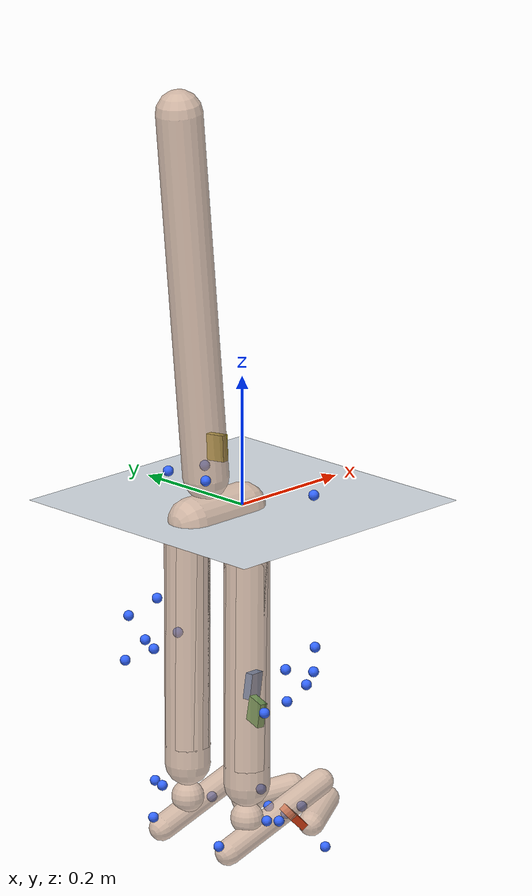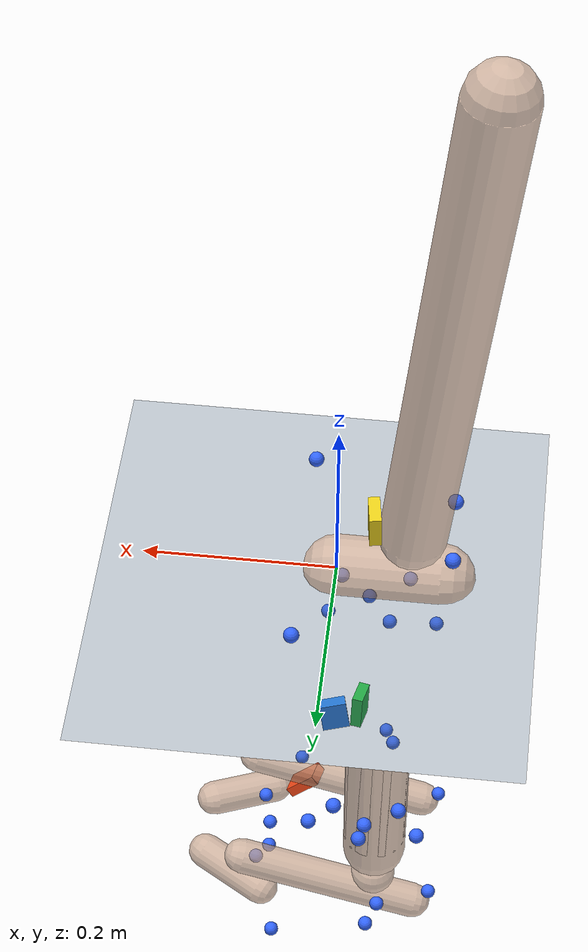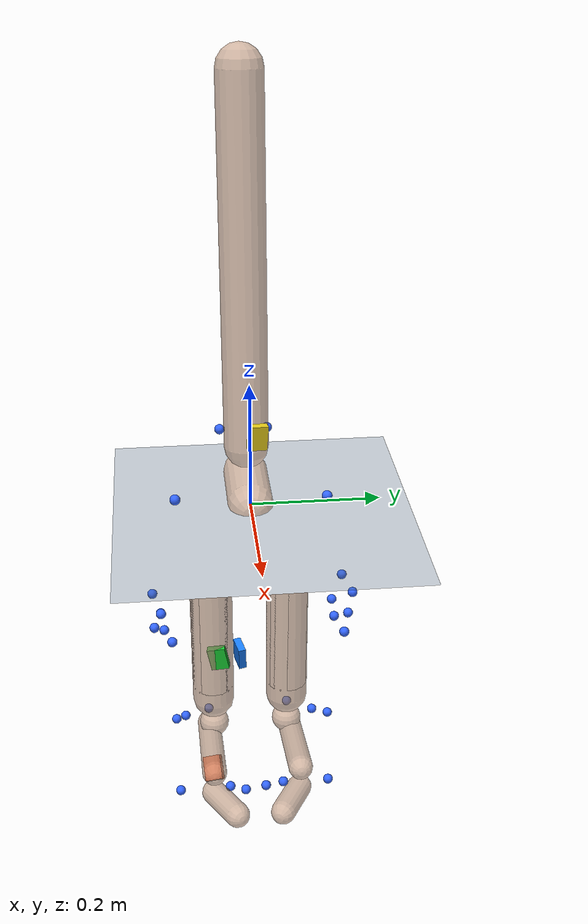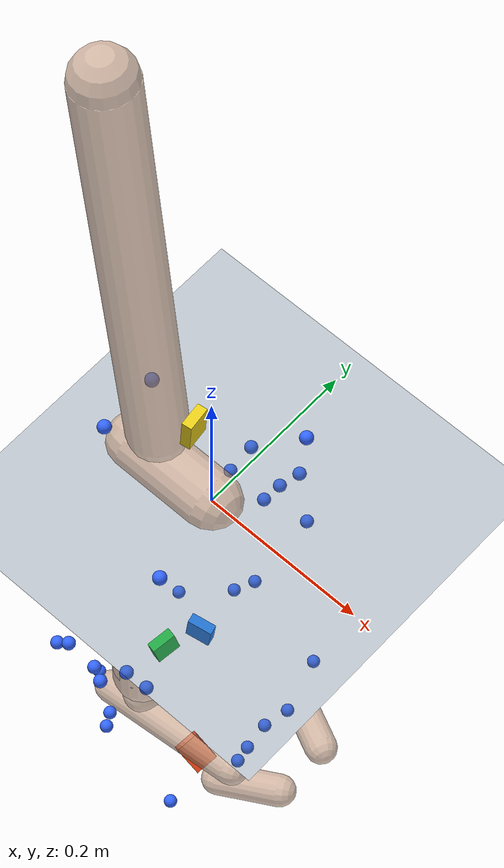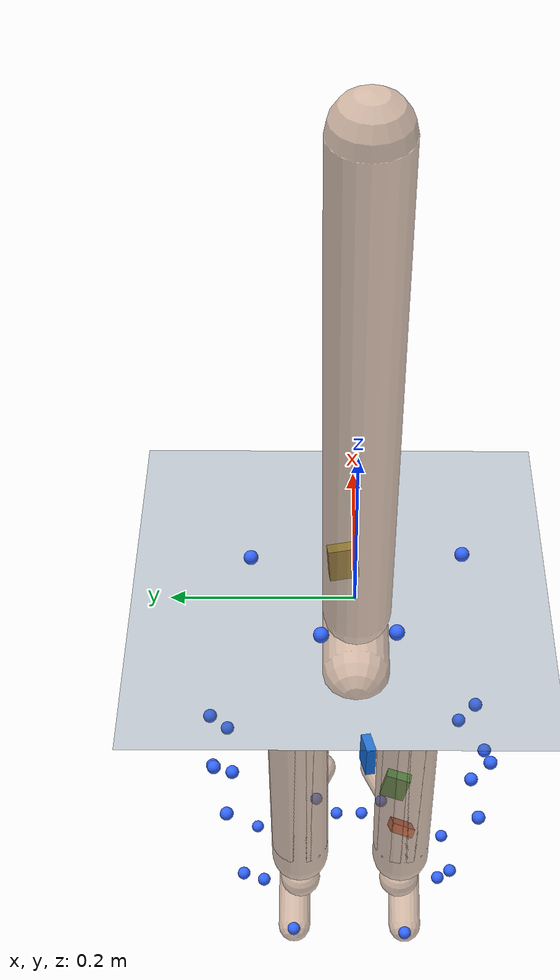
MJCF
<mujoco model="AB07">
  <compiler angle="radian" autolimits="true"/>
  <option timestep="0.005" gravity="0 0 -9.81"><flag contact="disable"/></option>
  <visual><global offwidth="1280" offheight="720"/></visual>
  <default><joint limited="false" damping="0"/><geom contype="0" conaffinity="0"/></default>
  <asset>
    <texture name="grid" type="2d" builtin="checker" rgb1="0.2 0.3 0.4" rgb2="0.3 0.4 0.5" width="512" height="512"/>
    <material name="grid" texture="grid" texrepeat="2 2" texuniform="true"/>
    <material name="skin" rgba="0.8 0.65 0.55 0.7"/>
  </asset>
  <worldbody>
    <light pos="0 0 4" dir="0 0 -1"/>
    <geom name="floor" type="plane" size="0 0 0.05" material="grid"/>
    <body name="pelvis" pos="0 0 0" quat="1 0 0 0">
      <joint name="pelvis_tx" type="slide" axis="1 0 0"/>
      <joint name="pelvis_ty" type="slide" axis="0 0 1"/>
      <joint name="pelvis_tz" type="slide" axis="0 -1 0"/>
      <joint name="pelvis_tilt" type="hinge" axis="0 -1 0"/>
      <joint name="pelvis_list" type="hinge" axis="1 0 0"/>
      <joint name="pelvis_rotation" type="hinge" axis="0 0 1"/>
      <inertial pos="-0.053515062 0 0" mass="9.21415" diaginertia="0.092141474 0.092141474 0.092141474"/>
      <geom type="capsule" fromto="0 0 0 -0.10703012 0 0" size="0.035" material="skin" mass="0"/>
      <site name="m_R_ASIS" pos="0.033664071 -0.11566936 0.033504694" size="0.008" rgba="0.2 0.4 1 1" group="2"/>
      <site name="m_L_ASIS" pos="0.03357233 0.11314141 0.027907197" size="0.008" rgba="0.2 0.4 1 1" group="2"/>
      <site name="m_L_PSIS" pos="-0.11820942 0.036312548 0.07132224" size="0.008" rgba="0.2 0.4 1 1" group="2"/>
      <site name="m_R_PSIS" pos="-0.11560514 -0.03937239 0.072488913" size="0.008" rgba="0.2 0.4 1 1" group="2"/>
      <body name="femur_r" pos="-0.053515062 -0.063203787 -0.050033177" quat="1 0 0 0">
        <joint name="hip_flexion_r" type="hinge" axis="0 -1 0"/>
        <joint name="hip_adduction_r" type="hinge" axis="1 0 0"/>
        <joint name="hip_rotation_r" type="hinge" axis="0 0 1"/>
        <inertial pos="0 0 -0.16663522" mass="7.27728" diaginertia="0.072772752 0.072772752 0.072772752"/>
        <geom type="capsule" fromto="0 0 0 0 0 -0.33327045" size="0.035" material="skin" mass="0"/>
        <site name="m_R_Thigh_Upper" pos="0.060391365 -0.082338532 -0.14067516" size="0.008" rgba="0.2 0.4 1 1" group="2"/>
        <site name="m_R_Thigh_Front" pos="0.07404481 -0.066461354 -0.18715813" size="0.008" rgba="0.2 0.4 1 1" group="2"/>
        <site name="m_R_Thigh_Rear" pos="0.029860654 -0.09457525 -0.18903628" size="0.008" rgba="0.2 0.4 1 1" group="2"/>
        <site name="m_R_Knee_Lat" pos="0.00231249 -0.065433357 -0.40603589" size="0.008" rgba="0.2 0.4 1 1" group="2"/>
        <site name="imu_thigh" type="box" size="0.02 0.015 0.006" pos="0.055822541 0.042829625 -0.23127469" quat="0.45993277 0.59535808 -0.41849646 0.50879399" rgba="0.1 0.5 1 1" group="1"/>
        <body name="tibia_r" pos="0 0 0" quat="1 0 0 0">
          <joint name="knee_r_translation1" type="slide" axis="1 0 0"/>
          <joint name="knee_r_translation2" type="slide" axis="0 0 1"/>
          <joint name="knee_angle_r" type="hinge" axis="0 -1 0"/>
          <inertial pos="0 0 -0.18137732" mass="2.90069" diaginertia="0.029006921 0.029006921 0.029006921"/>
          <geom type="capsule" fromto="0 0 0 0 0 -0.36275464" size="0.035" material="skin" mass="0"/>
          <site name="m_R_Shank_Upper" pos="-0.01556581 -0.095765854 -0.15307496" size="0.008" rgba="0.2 0.4 1 1" group="2"/>
          <site name="m_R_Shank_Front" pos="0.0047970893 -0.079035616 -0.21298879" size="0.008" rgba="0.2 0.4 1 1" group="2"/>
          <site name="m_R_Shank_Rear" pos="-0.0482926 -0.084404025 -0.21579566" size="0.008" rgba="0.2 0.4 1 1" group="2"/>
          <site name="m_R_Ankle_Lat" pos="-0.007256546 -0.049275476 -0.40762694" size="0.008" rgba="0.2 0.4 1 1" group="2"/>
          <site name="imu_shank" type="box" size="0.02 0.015 0.006" pos="0.029435314 0.0087096776 -0.25785491" quat="0.70201687 0.13758215 0.69872935 0.0045559866" rgba="0.1 0.8 0.2 1" group="1"/>
          <body name="talus_r" pos="0 0 -0.41774102" quat="1 0 0 0">
            <joint name="ankle_angle_r" type="hinge" axis="-0.10501355 -0.97912632 -0.17402245"/>
            <inertial pos="0 0 0" mass="0.0782385" diaginertia="0.00078238493 0.00078238493 0.00078238493"/>
            <geom type="sphere" size="0.025" material="skin" mass="0"/>
            <body name="calcn_r" pos="-0.047379603 -0.0076942066 -0.040754036" quat="1 0 0 0">
              <joint name="subtalar_angle_r" type="hinge" axis="0.78717961 0.12094949 0.60474746"/>
              <inertial pos="0.099121153 0 0.029736346" mass="0.977981" diaginertia="0.0097798117 0.0097798117 0.0097798117"/>
              <geom type="capsule" fromto="0 0 0 0.19824231 0 0.059472692" size="0.02" material="skin" mass="0"/>
              <site name="m_R_Heel" pos="-0.019088805 0.00081645212 0.014598644" size="0.008" rgba="0.2 0.4 1 1" group="2"/>
              <site name="m_R_Toe_Lat" pos="0.15084954 -0.056171535 -0.017837498" size="0.008" rgba="0.2 0.4 1 1" group="2"/>
              <site name="m_R_Toe_Med" pos="0.17681135 0.052611145 -0.0013907331" size="0.008" rgba="0.2 0.4 1 1" group="2"/>
              <site name="m_R_Toe_Tip" pos="0.18464869 0.026353316 0.015702997" size="0.008" rgba="0.2 0.4 1 1" group="2"/>
              <site name="imu_foot" type="box" size="0.02 0.015 0.006" pos="0.14047956 0.00041835149 0.017408971" quat="0.91865517 0.16605616 0.35767898 -0.023743879" rgba="1 0.3 0.1 1" group="1"/>
              <body name="toes_r" pos="0.17722862 -0.0010705085 -0.0019824231" quat="1 0 0 0">
                <joint name="mtp_angle_r" type="hinge" axis="-0.5809544 -0.81393611 0"/>
                <inertial pos="0.034295919 0.017346202 0.0059472692" mass="0.169465" diaginertia="0.0016946458 0.0016946458 0.0016946458"/>
                <geom type="capsule" fromto="0 0 0 0.068591838 0.034692404 0.011894538" size="0.02" material="skin" mass="0"/>
              </body>
            </body>
          </body>
        </body>
      </body>
      <body name="femur_l" pos="-0.053515062 0.063203787 -0.050033177" quat="1 0 0 0">
        <joint name="hip_flexion_l" type="hinge" axis="0 -1 0"/>
        <joint name="hip_adduction_l" type="hinge" axis="-1 0 0"/>
        <joint name="hip_rotation_l" type="hinge" axis="0 0 -1"/>
        <inertial pos="0 0 -0.16663522" mass="7.27728" diaginertia="0.072772752 0.072772752 0.072772752"/>
        <geom type="capsule" fromto="0 0 0 0 0 -0.33327045" size="0.035" material="skin" mass="0"/>
        <site name="m_L_Thigh_Upper" pos="0.037526398 0.10335059 -0.13475185" size="0.008" rgba="0.2 0.4 1 1" group="2"/>
        <site name="m_L_Thigh_Front" pos="0.06549258 0.087090839 -0.19284156" size="0.008" rgba="0.2 0.4 1 1" group="2"/>
        <site name="m_L_Thigh_Rear" pos="0.010575248 0.10181906 -0.19471217" size="0.008" rgba="0.2 0.4 1 1" group="2"/>
        <site name="m_L_Knee_Lat" pos="0.0018154116 0.07273436 -0.41281724" size="0.008" rgba="0.2 0.4 1 1" group="2"/>
        <body name="tibia_l" pos="0 0 0" quat="1 0 0 0">
          <joint name="knee_l_translation1" type="slide" axis="1 0 0"/>
          <joint name="knee_l_translation2" type="slide" axis="0 0 1"/>
          <joint name="knee_angle_l" type="hinge" axis="0 -1 0"/>
          <inertial pos="0 0 -0.18137732" mass="2.90069" diaginertia="0.029006921 0.029006921 0.029006921"/>
          <geom type="capsule" fromto="0 0 0 0 0 -0.36275464" size="0.035" material="skin" mass="0"/>
          <site name="m_L_Shank_Upper" pos="-0.029726724 0.095891105 -0.14423464" size="0.008" rgba="0.2 0.4 1 1" group="2"/>
          <site name="m_L_Shank_Front" pos="0.0066113286 0.079017243 -0.20261621" size="0.008" rgba="0.2 0.4 1 1" group="2"/>
          <site name="m_L_Shank_Rear" pos="-0.049726018 0.083138435 -0.20751362" size="0.008" rgba="0.2 0.4 1 1" group="2"/>
          <site name="m_L_Ankle_Lat" pos="-0.0084781213 0.046352266 -0.41108519" size="0.008" rgba="0.2 0.4 1 1" group="2"/>
          <body name="talus_l" pos="0 0 -0.41774102" quat="1 0 0 0">
            <joint name="ankle_angle_l" type="hinge" axis="0.10501355 -0.97912632 0.17402245"/>
            <inertial pos="0 0 0" mass="0.0782385" diaginertia="0.00078238493 0.00078238493 0.00078238493"/>
            <geom type="sphere" size="0.025" material="skin" mass="0"/>
            <body name="calcn_l" pos="-0.047379603 0.0076942066 -0.040754036" quat="1 0 0 0">
              <joint name="subtalar_angle_l" type="hinge" axis="-0.78717961 0.12094949 -0.60474746"/>
              <inertial pos="0.099121153 0 0.029736346" mass="0.977981" diaginertia="0.0097798117 0.0097798117 0.0097798117"/>
              <geom type="capsule" fromto="0 0 0 0.19824231 0 0.059472692" size="0.02" material="skin" mass="0"/>
              <site name="m_L_Heel" pos="-0.017802654 3.7905757e-05 0.021969163" size="0.008" rgba="0.2 0.4 1 1" group="2"/>
              <site name="m_L_Toe_Lat" pos="0.1584127 0.052329296 -0.0075494346" size="0.008" rgba="0.2 0.4 1 1" group="2"/>
              <site name="m_L_Toe_Med" pos="0.17394135 -0.054949531 0.002177226" size="0.008" rgba="0.2 0.4 1 1" group="2"/>
              <site name="m_L_Toe_Tip" pos="0.185787 -0.027203869 0.01907514" size="0.008" rgba="0.2 0.4 1 1" group="2"/>
              <body name="toes_l" pos="0.17722862 0.0010705085 -0.0019824231" quat="1 0 0 0">
                <joint name="mtp_angle_l" type="hinge" axis="0.5809544 -0.81393611 0"/>
                <inertial pos="0.034295919 -0.017346202 0.0059472692" mass="0.169465" diaginertia="0.0016946458 0.0016946458 0.0016946458"/>
                <geom type="capsule" fromto="0 0 0 0.068591838 -0.034692404 0.011894538" size="0.02" material="skin" mass="0"/>
              </body>
            </body>
          </body>
        </body>
      </body>
      <body name="torso" pos="-0.07622301 0 0.061689923" quat="1 0 0 0">
        <joint name="lumbar_extension" type="hinge" axis="0 -1 0"/>
        <joint name="lumbar_bending" type="hinge" axis="1 0 0"/>
        <joint name="lumbar_rotation" type="hinge" axis="0 0 1"/>
        <inertial pos="-0.026326377 0 0.28081469" mass="26.7862" diaginertia="0.267862 0.267862 0.267862"/>
        <geom type="capsule" fromto="0 0 0 -0.052652753 0 0.56162937" size="0.035" material="skin" mass="0"/>
        <site name="imu_trunk" type="box" size="0.02 0.015 0.006" pos="0.038196212 0.014434824 0.033363749" quat="0.69780128 -0.074850887 0.71163721 0.032298423" rgba="0.9 0.8 0.1 1" group="1"/>
      </body>
    </body>
  </worldbody>
  <sensor>
<accelerometer name="imu_foot_acc" site="imu_foot"/>
<gyro name="imu_foot_gyr" site="imu_foot"/>
<accelerometer name="imu_shank_acc" site="imu_shank"/>
<gyro name="imu_shank_gyr" site="imu_shank"/>
<accelerometer name="imu_thigh_acc" site="imu_thigh"/>
<gyro name="imu_thigh_gyr" site="imu_thigh"/>
<accelerometer name="imu_trunk_acc" site="imu_trunk"/>
<gyro name="imu_trunk_gyr" site="imu_trunk"/>
</sensor>
</mujoco>
